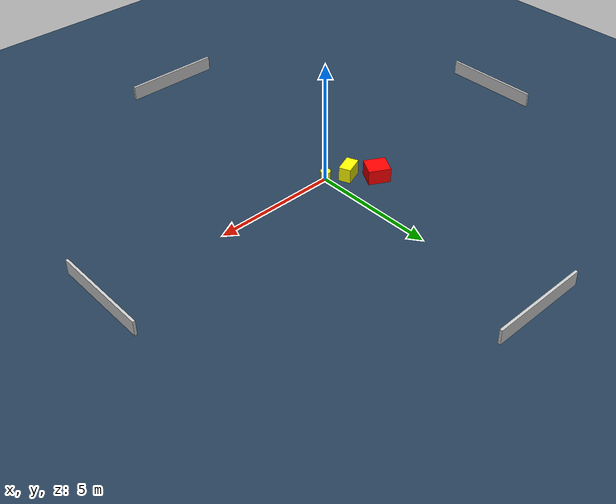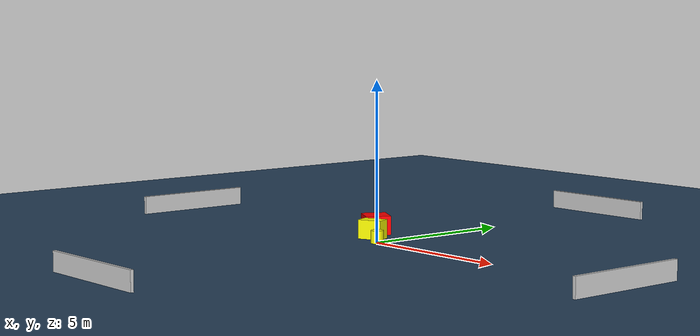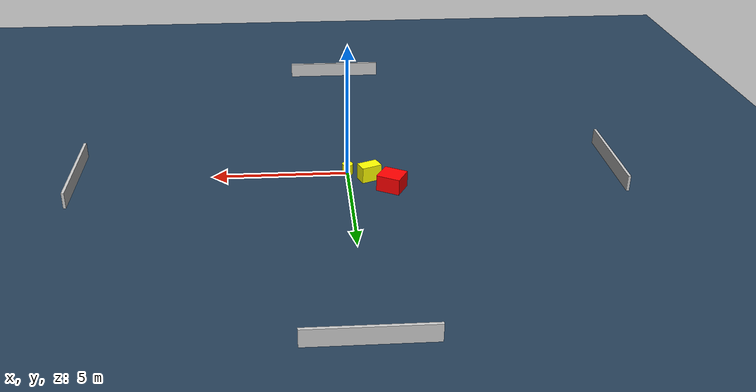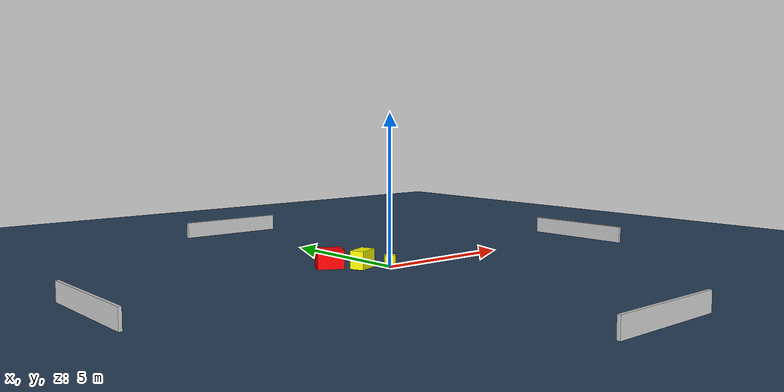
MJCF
<?xml version="1.0" ?>
<mujoco model="generated_environment">
  <option timestep="0.01" integrator="RK4" cone="elliptic"/>
  <default>
    <geom density="1"/>
  </default>
  <asset>
    <texture builtin="gradient" height="3072" name="skybox" rgb1="0.3 0.5 0.7" rgb2="0 0 0" type="skybox" width="512"/>
    <texture builtin="checker" height="300" name="groundplane" rgb1="0.2 0.3 0.4" rgb2="0.1 0.2 0.3" type="2d" width="300"/>
    <material name="groundplane" reflectance="0.2" texrepeat="5 5" texture="groundplane"/>
  </asset>
  <worldbody>
    <light dir="0 0 -1" directional="true" pos="0 0 1.5"/>
    <geom condim="3" friction="0.5 0.005 0.001" material="groundplane" name="floor" pos="0 0 0" size="0 0 0.05" type="plane"/>
    <body name="walls">
      <geom name="wall_1" condim="4" pos="-10.0 0.0 0.3" rgba="0.800000011920929 0.800000011920929 0.800000011920929 1.0" size="0.05 2.0 0.3" type="box"/>
      <geom name="wall_2" condim="4" pos="10.0 0.0 0.3" rgba="0.800000011920929 0.800000011920929 0.800000011920929 1.0" size="0.05 2.0 0.3" type="box"/>
      <geom name="wall_3" condim="4" pos="0.0 -10.0 0.3" rgba="0.800000011920929 0.800000011920929 0.800000011920929 1.0" size="2.0 0.05 0.3" type="box"/>
      <geom name="wall_4" condim="4" pos="0.0 10.0 0.3" rgba="0.800000011920929 0.800000011920929 0.800000011920929 1.0" size="2.0 0.05 0.3" type="box"/>
    </body>
    <body name="robot">
      <joint name="joint_x" type="slide" pos="0 0 0" axis="1 0 0"/>
      <joint name="joint_y" type="slide" pos="0 0 0" axis="0 1 0"/>
      <geom name="robot" type="cylinder" pos="0.0 0.0 0.2" size="0.2 0.2 0.0" mass="5.0" friction="1.0 0.005 0.0001" condim="4" rgba="1.0 1.0 0.0 1.0"/>
    </body>
    <body name="obstacle_1_movable">
      <geom name="obstacle_1_movable" condim="4" pos="-0.772426975599934 0.4716932411960795 0.3" euler="0 0 22.01464515462949" friction="0.0 0.005 0.001" rgba="1.0 1.0 0.0 1.0" size="0.3848548755187112 0.23865133345897055 0.3" type="box" mass="0.1"/>
      <joint type="free"/>
    </body>
    <body name="obstacle_2_static">
      <geom name="obstacle_2_static" condim="4" pos="-1.5282811370446439 1.251401406691933 0.3" euler="0 0 331.0646483688851" friction="0.0 0.005 0.001" rgba="1.0 0.0 0.0 1.0" size="0.4395616696766109 0.40028591292112825 0.3" type="box"/>
    </body>
  </worldbody>
  <actuator>
    <motor name="actuator_x" joint="joint_x" gear="1" ctrlrange="-1 1"/>
    <motor name="actuator_y" joint="joint_y" gear="1" ctrlrange="-1 1"/>
  </actuator>
</mujoco>
